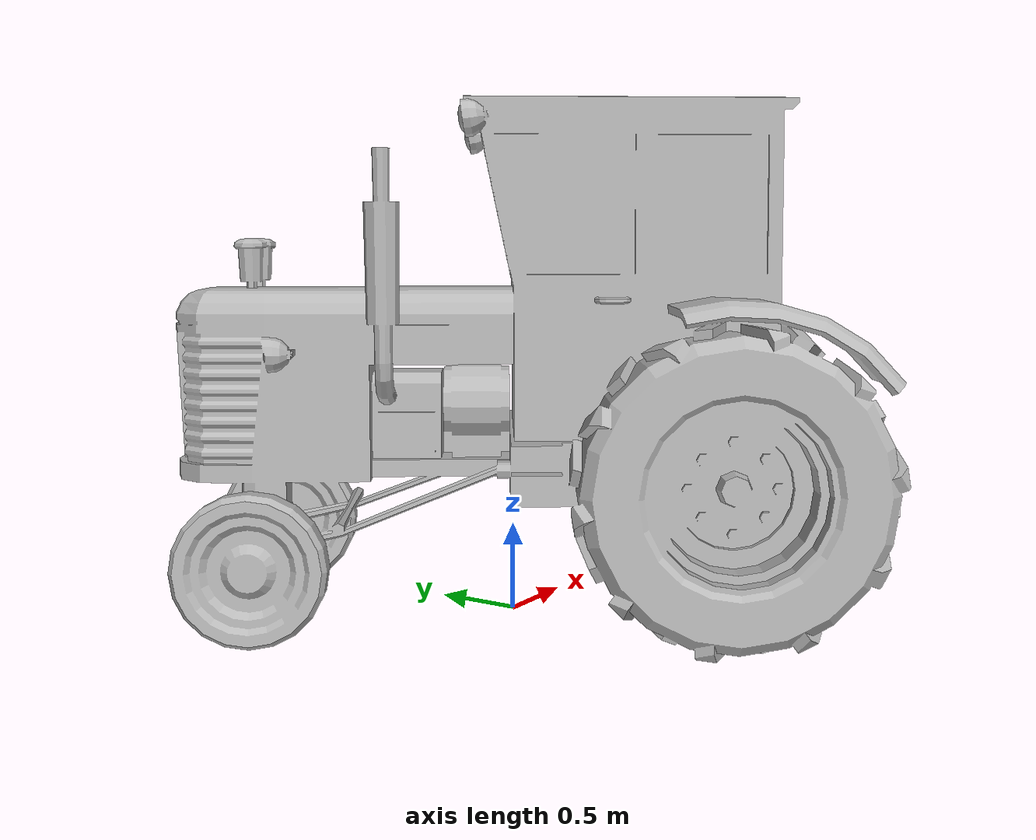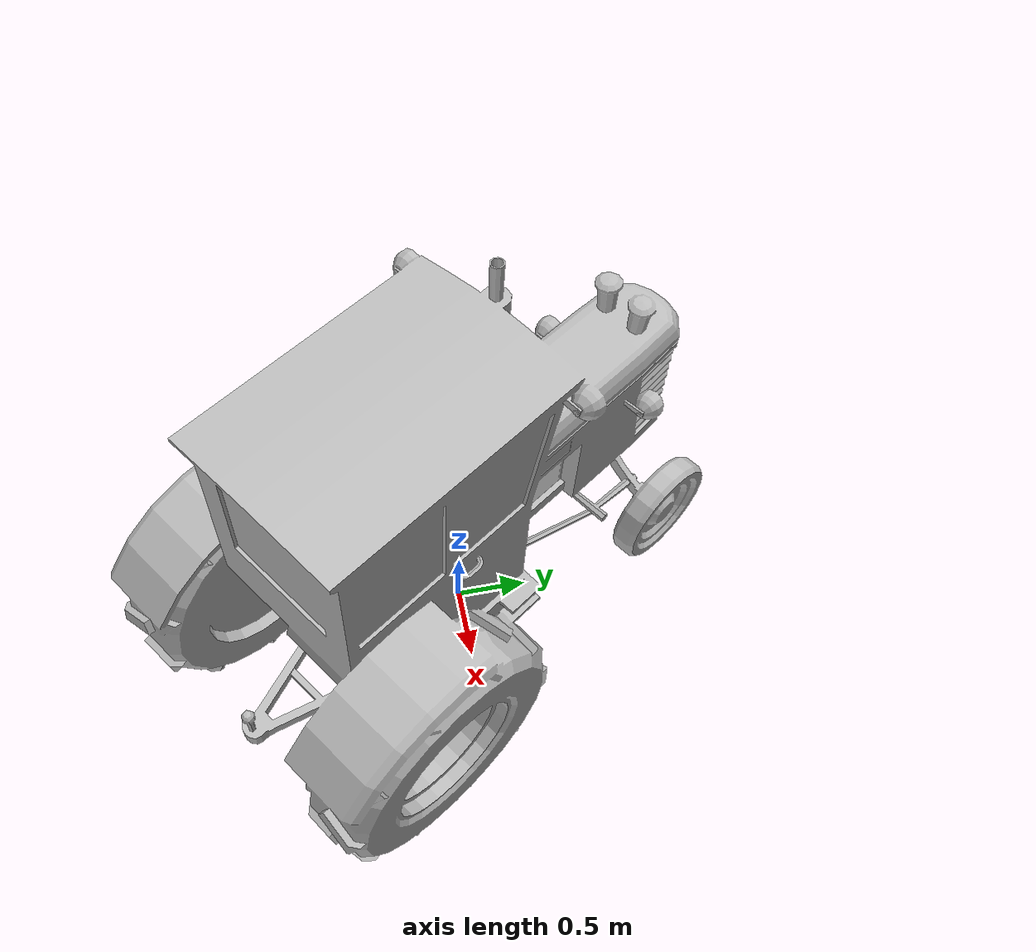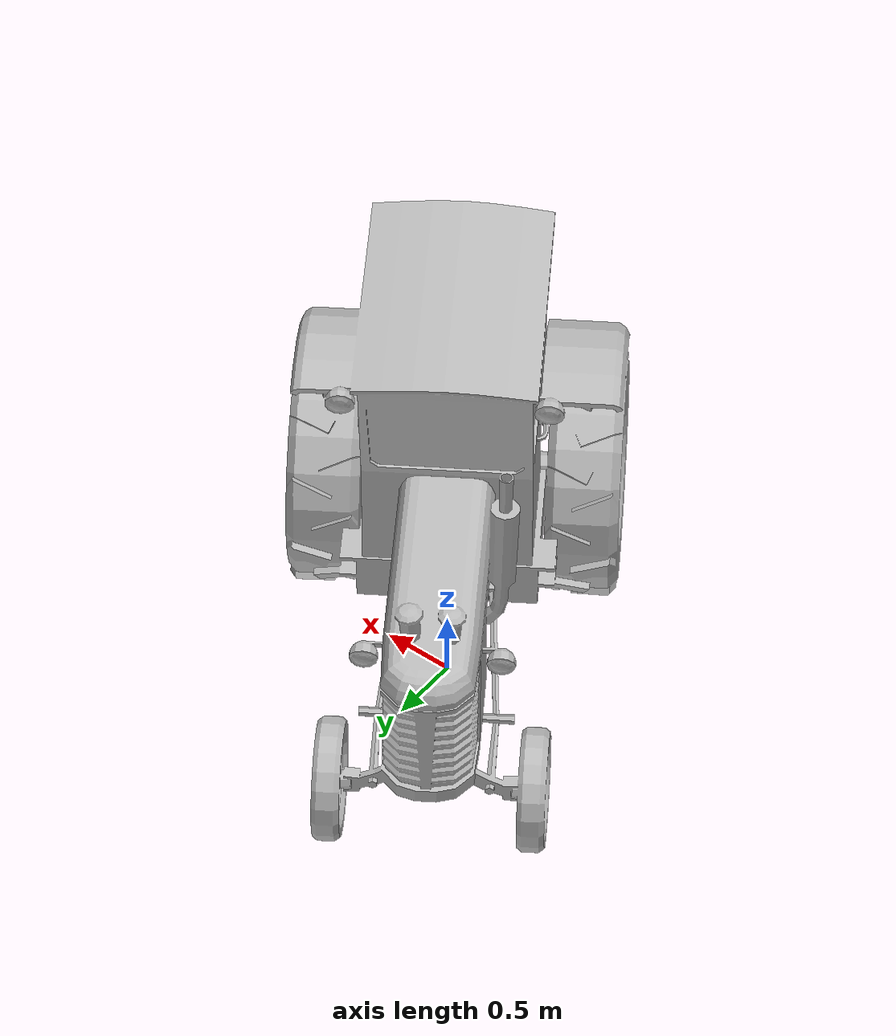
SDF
<sdf version="1.7">
  <model name="tractor_new">
    <static>true</static>
    <link name="tractor_new_link">
      <collision name="tractor_new_collision">
        <geometry>
          <mesh>
            <uri>model://tractor_new/tractor_new.dae</uri>
            <scale>1 1 1</scale>
          </mesh>
        </geometry>
      </collision>
      <visual name="tractor_new_visual">
        <geometry>
          <mesh>
            <uri>model://tractor_new/tractor_new.dae</uri>
            <scale>1 1 1</scale>
          </mesh>
        </geometry>
      </visual>
    </link>
  </model>
</sdf>
